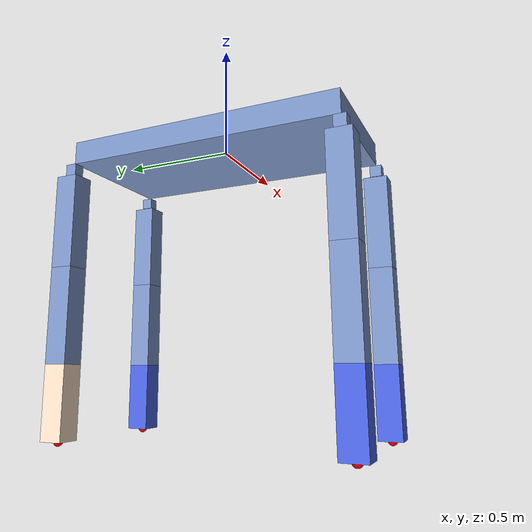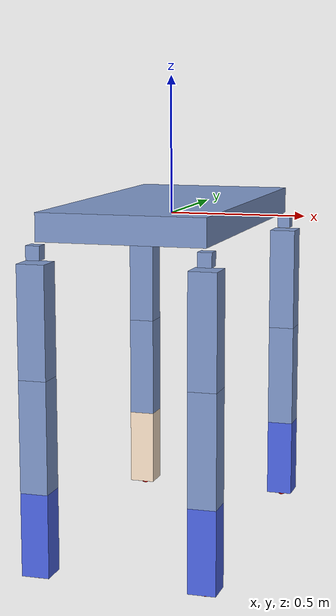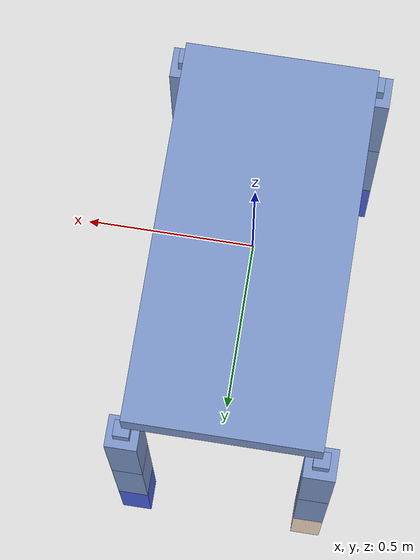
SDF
<?xml version='1.0' encoding='ASCII'?>
<sdf version="1.4">
  <model name="BabyElephant">
    <link name="Body">
      <pose>0.000000 0.000000 0.000000 0.000000 0.000000 0.000000</pose>
      <inertial>
        <pose>0.000000 0.000000 0.000000 0.000000 0.000000 0.000000</pose>
        <mass>7.200000</mass>
        <inertia>
          <ixx>0.870000</ixx>
          <ixy>0.000000</ixy>
          <ixz>0.000000</ixz>
          <iyy>0.222000</iyy>
          <iyz>0.000000</iyz>
          <izz>1.080000</izz>
        </inertia>
      </inertial>
      <collision name="Body_collision">
        <pose>0.000000 0.000000 0.000000 0.000000 0.000000 0.000000</pose>
        <geometry>
          <box>
            <size>0.600000 1.200000 0.100000</size>
          </box>
        </geometry>
      </collision>
      <visual name="Body_visual">
        <pose>0.000000 0.000000 0.000000 0.000000 0.000000 0.000000</pose>
        <geometry>
          <box>
            <size>0.600000 1.200000 0.100000</size>
          </box>
        </geometry>
        <material>
          <diffuse>0.500000 0.600000 0.800000</diffuse>
        </material>
      </visual>
    </link>
    <link name="00FLHip">
      <pose>-0.300000 0.600000 -0.060000 0.000000 0.000000 0.000000</pose>
      <inertial>
        <pose>0.000000 0.000000 -0.025000 0.000000 0.000000 0.000000</pose>
        <mass>0.012500</mass>
        <inertia>
          <ixx>0.000005</ixx>
          <ixy>0.000000</ixy>
          <ixz>0.000000</ixz>
          <iyy>0.000005</iyy>
          <iyz>0.000000</iyz>
          <izz>0.000005</izz>
        </inertia>
      </inertial>
      <collision name="00FLHip_collision">
        <pose>0.000000 0.000000 -0.025000 0.000000 0.000000 0.000000</pose>
        <geometry>
          <box>
            <size>0.050000 0.050000 0.050000</size>
          </box>
        </geometry>
      </collision>
      <visual name="00FLHip_visual">
        <pose>0.000000 0.000000 -0.025000 0.000000 0.000000 0.000000</pose>
        <geometry>
          <box>
            <size>0.050000 0.050000 0.050000</size>
          </box>
        </geometry>
        <material>
          <diffuse>0.500000 0.600000 0.800000</diffuse>
        </material>
      </visual>
    </link>
    <link name="01FLThigh">
      <pose>-0.300000 0.600000 -0.120000 0.000000 0.000000 0.000000</pose>
      <inertial>
        <pose>0.000000 0.000000 -0.200000 0.000000 0.000000 0.000000</pose>
        <mass>0.400000</mass>
        <inertia>
          <ixx>0.005667</ixx>
          <ixy>0.000000</ixy>
          <ixz>0.000000</ixz>
          <iyy>0.005667</iyy>
          <iyz>0.000000</iyz>
          <izz>0.000667</izz>
        </inertia>
      </inertial>
      <collision name="01FLThigh_collision">
        <pose>0.000000 0.000000 -0.200000 0.000000 0.000000 0.000000</pose>
        <geometry>
          <box>
            <size>0.100000 0.100000 0.400000</size>
          </box>
        </geometry>
      </collision>
      <visual name="01FLThigh_visual">
        <pose>0.000000 0.000000 -0.200000 0.000000 0.000000 0.000000</pose>
        <geometry>
          <box>
            <size>0.100000 0.100000 0.400000</size>
          </box>
        </geometry>
        <material>
          <diffuse>0.500000 0.600000 0.800000</diffuse>
        </material>
      </visual>
    </link>
    <link name="02FLShin">
      <pose>-0.300000 0.600000 -0.520000 0.000000 0.000000 0.000000</pose>
      <inertial>
        <pose>0.000000 0.000000 -0.200000 0.000000 0.000000 0.000000</pose>
        <mass>0.400000</mass>
        <inertia>
          <ixx>0.005667</ixx>
          <ixy>0.000000</ixy>
          <ixz>0.000000</ixz>
          <iyy>0.005667</iyy>
          <iyz>0.000000</iyz>
          <izz>0.000667</izz>
        </inertia>
      </inertial>
      <collision name="02FLShin_collision">
        <pose>0.000000 0.000000 -0.200000 0.000000 0.000000 0.000000</pose>
        <geometry>
          <box>
            <size>0.100000 0.100000 0.400000</size>
          </box>
        </geometry>
      </collision>
      <visual name="02FLShin_visual">
        <pose>0.000000 0.000000 -0.200000 0.000000 0.000000 0.000000</pose>
        <geometry>
          <box>
            <size>0.100000 0.100000 0.400000</size>
          </box>
        </geometry>
        <material>
          <diffuse>0.500000 0.600000 0.800000</diffuse>
        </material>
      </visual>
    </link>
    <link name="03FLFoot">
      <pose>-0.300000 0.600000 -0.920000 0.000000 0.000000 0.000000</pose>
      <inertial>
        <pose>0.000000 0.000000 -0.150000 0.000000 0.000000 0.000000</pose>
        <mass>0.300000</mass>
        <inertia>
          <ixx>0.002500</ixx>
          <ixy>0.000000</ixy>
          <ixz>0.000000</ixz>
          <iyy>0.002500</iyy>
          <iyz>0.000000</iyz>
          <izz>0.000500</izz>
        </inertia>
      </inertial>
      <collision name="03FLFoot_collision">
        <pose>0.000000 0.000000 -0.150000 0.000000 0.000000 0.000000</pose>
        <geometry>
          <box>
            <size>0.100000 0.100000 0.300000</size>
          </box>
        </geometry>
      </collision>
      <visual name="03FLFoot_visual">
        <pose>0.000000 0.000000 -0.150000 0.000000 0.000000 0.000000</pose>
        <geometry>
          <box>
            <size>0.100000 0.100000 0.300000</size>
          </box>
        </geometry>
        <material>
          <diffuse>1.000000 0.900000 0.800000</diffuse>
        </material>
      </visual>
      <visual name="FL_End">
        <pose>0.000000 0.000000 -0.300000 0.000000 0.000000 0.000000</pose>
        <geometry>
          <sphere>
            <radius>0.020000</radius>
          </sphere>
        </geometry>
        <material>
          <diffuse>1.000000 0.000000 0.000000</diffuse>
        </material>
      </visual>
    </link>
    <link name="04FRHip">
      <pose>0.300000 0.600000 -0.060000 0.000000 0.000000 0.000000</pose>
      <inertial>
        <pose>0.000000 0.000000 -0.025000 0.000000 0.000000 0.000000</pose>
        <mass>0.012500</mass>
        <inertia>
          <ixx>0.000005</ixx>
          <ixy>0.000000</ixy>
          <ixz>0.000000</ixz>
          <iyy>0.000005</iyy>
          <iyz>0.000000</iyz>
          <izz>0.000005</izz>
        </inertia>
      </inertial>
      <collision name="04FRHip_collision">
        <pose>0.000000 0.000000 -0.025000 0.000000 0.000000 0.000000</pose>
        <geometry>
          <box>
            <size>0.050000 0.050000 0.050000</size>
          </box>
        </geometry>
      </collision>
      <visual name="04FRHip_visual">
        <pose>0.000000 0.000000 -0.025000 0.000000 0.000000 0.000000</pose>
        <geometry>
          <box>
            <size>0.050000 0.050000 0.050000</size>
          </box>
        </geometry>
        <material>
          <diffuse>0.500000 0.600000 0.800000</diffuse>
        </material>
      </visual>
    </link>
    <link name="05FRThigh">
      <pose>0.300000 0.600000 -0.120000 0.000000 0.000000 0.000000</pose>
      <inertial>
        <pose>0.000000 0.000000 -0.200000 0.000000 0.000000 0.000000</pose>
        <mass>0.400000</mass>
        <inertia>
          <ixx>0.005667</ixx>
          <ixy>0.000000</ixy>
          <ixz>0.000000</ixz>
          <iyy>0.005667</iyy>
          <iyz>0.000000</iyz>
          <izz>0.000667</izz>
        </inertia>
      </inertial>
      <collision name="05FRThigh_collision">
        <pose>0.000000 0.000000 -0.200000 0.000000 0.000000 0.000000</pose>
        <geometry>
          <box>
            <size>0.100000 0.100000 0.400000</size>
          </box>
        </geometry>
      </collision>
      <visual name="05FRThigh_visual">
        <pose>0.000000 0.000000 -0.200000 0.000000 0.000000 0.000000</pose>
        <geometry>
          <box>
            <size>0.100000 0.100000 0.400000</size>
          </box>
        </geometry>
        <material>
          <diffuse>0.500000 0.600000 0.800000</diffuse>
        </material>
      </visual>
    </link>
    <link name="06FRShin">
      <pose>0.300000 0.600000 -0.520000 0.000000 0.000000 0.000000</pose>
      <inertial>
        <pose>0.000000 0.000000 -0.200000 0.000000 0.000000 0.000000</pose>
        <mass>0.400000</mass>
        <inertia>
          <ixx>0.005667</ixx>
          <ixy>0.000000</ixy>
          <ixz>0.000000</ixz>
          <iyy>0.005667</iyy>
          <iyz>0.000000</iyz>
          <izz>0.000667</izz>
        </inertia>
      </inertial>
      <collision name="06FRShin_collision">
        <pose>0.000000 0.000000 -0.200000 0.000000 0.000000 0.000000</pose>
        <geometry>
          <box>
            <size>0.100000 0.100000 0.400000</size>
          </box>
        </geometry>
      </collision>
      <visual name="06FRShin_visual">
        <pose>0.000000 0.000000 -0.200000 0.000000 0.000000 0.000000</pose>
        <geometry>
          <box>
            <size>0.100000 0.100000 0.400000</size>
          </box>
        </geometry>
        <material>
          <diffuse>0.500000 0.600000 0.800000</diffuse>
        </material>
      </visual>
    </link>
    <link name="07FRFoot">
      <pose>0.300000 0.600000 -0.920000 0.000000 0.000000 0.000000</pose>
      <inertial>
        <pose>0.000000 0.000000 -0.150000 0.000000 0.000000 0.000000</pose>
        <mass>0.300000</mass>
        <inertia>
          <ixx>0.002500</ixx>
          <ixy>0.000000</ixy>
          <ixz>0.000000</ixz>
          <iyy>0.002500</iyy>
          <iyz>0.000000</iyz>
          <izz>0.000500</izz>
        </inertia>
      </inertial>
      <collision name="07FRFoot_collision">
        <pose>0.000000 0.000000 -0.150000 0.000000 0.000000 0.000000</pose>
        <geometry>
          <box>
            <size>0.100000 0.100000 0.300000</size>
          </box>
        </geometry>
      </collision>
      <visual name="07FRFoot_visual">
        <pose>0.000000 0.000000 -0.150000 0.000000 0.000000 0.000000</pose>
        <geometry>
          <box>
            <size>0.100000 0.100000 0.300000</size>
          </box>
        </geometry>
        <material>
          <diffuse>0.300000 0.400000 0.900000</diffuse>
        </material>
      </visual>
      <visual name="FR_End">
        <pose>0.000000 0.000000 -0.300000 0.000000 0.000000 0.000000</pose>
        <geometry>
          <sphere>
            <radius>0.020000</radius>
          </sphere>
        </geometry>
        <material>
          <diffuse>1.000000 0.000000 0.000000</diffuse>
        </material>
      </visual>
    </link>
    <link name="08BLHip">
      <pose>-0.300000 -0.600000 -0.060000 0.000000 0.000000 0.000000</pose>
      <inertial>
        <pose>0.000000 0.000000 -0.025000 0.000000 0.000000 0.000000</pose>
        <mass>0.012500</mass>
        <inertia>
          <ixx>0.000005</ixx>
          <ixy>0.000000</ixy>
          <ixz>0.000000</ixz>
          <iyy>0.000005</iyy>
          <iyz>0.000000</iyz>
          <izz>0.000005</izz>
        </inertia>
      </inertial>
      <collision name="08BLHip_collision">
        <pose>0.000000 0.000000 -0.025000 0.000000 0.000000 0.000000</pose>
        <geometry>
          <box>
            <size>0.050000 0.050000 0.050000</size>
          </box>
        </geometry>
      </collision>
      <visual name="08BLHip_visual">
        <pose>0.000000 0.000000 -0.025000 0.000000 0.000000 0.000000</pose>
        <geometry>
          <box>
            <size>0.050000 0.050000 0.050000</size>
          </box>
        </geometry>
        <material>
          <diffuse>0.500000 0.600000 0.800000</diffuse>
        </material>
      </visual>
    </link>
    <link name="09BLThigh">
      <pose>-0.300000 -0.600000 -0.120000 0.000000 0.000000 0.000000</pose>
      <inertial>
        <pose>0.000000 0.000000 -0.200000 0.000000 0.000000 0.000000</pose>
        <mass>0.400000</mass>
        <inertia>
          <ixx>0.005667</ixx>
          <ixy>0.000000</ixy>
          <ixz>0.000000</ixz>
          <iyy>0.005667</iyy>
          <iyz>0.000000</iyz>
          <izz>0.000667</izz>
        </inertia>
      </inertial>
      <collision name="09BLThigh_collision">
        <pose>0.000000 0.000000 -0.200000 0.000000 0.000000 0.000000</pose>
        <geometry>
          <box>
            <size>0.100000 0.100000 0.400000</size>
          </box>
        </geometry>
      </collision>
      <visual name="09BLThigh_visual">
        <pose>0.000000 0.000000 -0.200000 0.000000 0.000000 0.000000</pose>
        <geometry>
          <box>
            <size>0.100000 0.100000 0.400000</size>
          </box>
        </geometry>
        <material>
          <diffuse>0.500000 0.600000 0.800000</diffuse>
        </material>
      </visual>
    </link>
    <link name="10BLShin">
      <pose>-0.300000 -0.600000 -0.520000 0.000000 0.000000 0.000000</pose>
      <inertial>
        <pose>0.000000 0.000000 -0.200000 0.000000 0.000000 0.000000</pose>
        <mass>0.400000</mass>
        <inertia>
          <ixx>0.005667</ixx>
          <ixy>0.000000</ixy>
          <ixz>0.000000</ixz>
          <iyy>0.005667</iyy>
          <iyz>0.000000</iyz>
          <izz>0.000667</izz>
        </inertia>
      </inertial>
      <collision name="10BLShin_collision">
        <pose>0.000000 0.000000 -0.200000 0.000000 0.000000 0.000000</pose>
        <geometry>
          <box>
            <size>0.100000 0.100000 0.400000</size>
          </box>
        </geometry>
      </collision>
      <visual name="10BLShin_visual">
        <pose>0.000000 0.000000 -0.200000 0.000000 0.000000 0.000000</pose>
        <geometry>
          <box>
            <size>0.100000 0.100000 0.400000</size>
          </box>
        </geometry>
        <material>
          <diffuse>0.500000 0.600000 0.800000</diffuse>
        </material>
      </visual>
    </link>
    <link name="11BLFoot">
      <pose>-0.300000 -0.600000 -0.920000 0.000000 0.000000 0.000000</pose>
      <inertial>
        <pose>0.000000 0.000000 -0.150000 0.000000 0.000000 0.000000</pose>
        <mass>0.300000</mass>
        <inertia>
          <ixx>0.002500</ixx>
          <ixy>0.000000</ixy>
          <ixz>0.000000</ixz>
          <iyy>0.002500</iyy>
          <iyz>0.000000</iyz>
          <izz>0.000500</izz>
        </inertia>
      </inertial>
      <collision name="11BLFoot_collision">
        <pose>0.000000 0.000000 -0.150000 0.000000 0.000000 0.000000</pose>
        <geometry>
          <box>
            <size>0.100000 0.100000 0.300000</size>
          </box>
        </geometry>
      </collision>
      <visual name="11BLFoot_visual">
        <pose>0.000000 0.000000 -0.150000 0.000000 0.000000 0.000000</pose>
        <geometry>
          <box>
            <size>0.100000 0.100000 0.300000</size>
          </box>
        </geometry>
        <material>
          <diffuse>0.300000 0.400000 0.900000</diffuse>
        </material>
      </visual>
      <visual name="BL_End">
        <pose>0.000000 0.000000 -0.300000 0.000000 0.000000 0.000000</pose>
        <geometry>
          <sphere>
            <radius>0.020000</radius>
          </sphere>
        </geometry>
        <material>
          <diffuse>1.000000 0.000000 0.000000</diffuse>
        </material>
      </visual>
    </link>
    <link name="12BRHip">
      <pose>0.300000 -0.600000 -0.060000 0.000000 0.000000 0.000000</pose>
      <inertial>
        <pose>0.000000 0.000000 -0.025000 0.000000 0.000000 0.000000</pose>
        <mass>0.012500</mass>
        <inertia>
          <ixx>0.000005</ixx>
          <ixy>0.000000</ixy>
          <ixz>0.000000</ixz>
          <iyy>0.000005</iyy>
          <iyz>0.000000</iyz>
          <izz>0.000005</izz>
        </inertia>
      </inertial>
      <collision name="12BRHip_collision">
        <pose>0.000000 0.000000 -0.025000 0.000000 0.000000 0.000000</pose>
        <geometry>
          <box>
            <size>0.050000 0.050000 0.050000</size>
          </box>
        </geometry>
      </collision>
      <visual name="12BRHip_visual">
        <pose>0.000000 0.000000 -0.025000 0.000000 0.000000 0.000000</pose>
        <geometry>
          <box>
            <size>0.050000 0.050000 0.050000</size>
          </box>
        </geometry>
        <material>
          <diffuse>0.500000 0.600000 0.800000</diffuse>
        </material>
      </visual>
    </link>
    <link name="13BRThigh">
      <pose>0.300000 -0.600000 -0.120000 0.000000 0.000000 0.000000</pose>
      <inertial>
        <pose>0.000000 0.000000 -0.200000 0.000000 0.000000 0.000000</pose>
        <mass>0.400000</mass>
        <inertia>
          <ixx>0.005667</ixx>
          <ixy>0.000000</ixy>
          <ixz>0.000000</ixz>
          <iyy>0.005667</iyy>
          <iyz>0.000000</iyz>
          <izz>0.000667</izz>
        </inertia>
      </inertial>
      <collision name="13BRThigh_collision">
        <pose>0.000000 0.000000 -0.200000 0.000000 0.000000 0.000000</pose>
        <geometry>
          <box>
            <size>0.100000 0.100000 0.400000</size>
          </box>
        </geometry>
      </collision>
      <visual name="13BRThigh_visual">
        <pose>0.000000 0.000000 -0.200000 0.000000 0.000000 0.000000</pose>
        <geometry>
          <box>
            <size>0.100000 0.100000 0.400000</size>
          </box>
        </geometry>
        <material>
          <diffuse>0.500000 0.600000 0.800000</diffuse>
        </material>
      </visual>
    </link>
    <link name="14BRShin">
      <pose>0.300000 -0.600000 -0.520000 0.000000 0.000000 0.000000</pose>
      <inertial>
        <pose>0.000000 0.000000 -0.200000 0.000000 0.000000 0.000000</pose>
        <mass>0.400000</mass>
        <inertia>
          <ixx>0.005667</ixx>
          <ixy>0.000000</ixy>
          <ixz>0.000000</ixz>
          <iyy>0.005667</iyy>
          <iyz>0.000000</iyz>
          <izz>0.000667</izz>
        </inertia>
      </inertial>
      <collision name="14BRShin_collision">
        <pose>0.000000 0.000000 -0.200000 0.000000 0.000000 0.000000</pose>
        <geometry>
          <box>
            <size>0.100000 0.100000 0.400000</size>
          </box>
        </geometry>
      </collision>
      <visual name="14BRShin_visual">
        <pose>0.000000 0.000000 -0.200000 0.000000 0.000000 0.000000</pose>
        <geometry>
          <box>
            <size>0.100000 0.100000 0.400000</size>
          </box>
        </geometry>
        <material>
          <diffuse>0.500000 0.600000 0.800000</diffuse>
        </material>
      </visual>
    </link>
    <link name="15BRFoot">
      <pose>0.300000 -0.600000 -0.920000 0.000000 0.000000 0.000000</pose>
      <inertial>
        <pose>0.000000 0.000000 -0.150000 0.000000 0.000000 0.000000</pose>
        <mass>0.300000</mass>
        <inertia>
          <ixx>0.002500</ixx>
          <ixy>0.000000</ixy>
          <ixz>0.000000</ixz>
          <iyy>0.002500</iyy>
          <iyz>0.000000</iyz>
          <izz>0.000500</izz>
        </inertia>
      </inertial>
      <collision name="15BRFoot_collision">
        <pose>0.000000 0.000000 -0.150000 0.000000 0.000000 0.000000</pose>
        <geometry>
          <box>
            <size>0.100000 0.100000 0.300000</size>
          </box>
        </geometry>
      </collision>
      <visual name="15BRFoot_visual">
        <pose>0.000000 0.000000 -0.150000 0.000000 0.000000 0.000000</pose>
        <geometry>
          <box>
            <size>0.100000 0.100000 0.300000</size>
          </box>
        </geometry>
        <material>
          <diffuse>0.300000 0.400000 0.900000</diffuse>
        </material>
      </visual>
      <visual name="BR_End">
        <pose>0.000000 0.000000 -0.300000 0.000000 0.000000 0.000000</pose>
        <geometry>
          <sphere>
            <radius>0.020000</radius>
          </sphere>
        </geometry>
        <material>
          <diffuse>1.000000 0.000000 0.000000</diffuse>
        </material>
      </visual>
    </link>
    <joint name="j_00FLHip" type="revolute">
      <pose>0.000000 0.000000 0.000000 0.000000 0.000000 0.000000</pose>
      <use_parent_model_frame>0</use_parent_model_frame>
      <parent>Body</parent>
      <child>00FLHip</child>
      <axis>
        <xyz>0.000000 1.000000 0.000000</xyz>
        <limit>
          <lower>-3.141593</lower>
          <upper>3.141593</upper>
          <effort>200.000000</effort>
          <velocity>12.000000</velocity>
        </limit>
      </axis>
    </joint>
    <joint name="j_01FLThigh" type="revolute">
      <pose>0.000000 0.000000 0.000000 0.000000 0.000000 0.000000</pose>
      <use_parent_model_frame>0</use_parent_model_frame>
      <parent>00FLHip</parent>
      <child>01FLThigh</child>
      <axis>
        <xyz>1.000000 0.000000 0.000000</xyz>
        <limit>
          <lower>-3.141593</lower>
          <upper>3.141593</upper>
          <effort>200.000000</effort>
          <velocity>12.000000</velocity>
        </limit>
      </axis>
    </joint>
    <joint name="j_02FLShin" type="revolute">
      <pose>0.000000 0.000000 0.000000 0.000000 0.000000 0.000000</pose>
      <use_parent_model_frame>0</use_parent_model_frame>
      <parent>01FLThigh</parent>
      <child>02FLShin</child>
      <axis>
        <xyz>1.000000 0.000000 0.000000</xyz>
        <limit>
          <lower>-3.141593</lower>
          <upper>3.141593</upper>
          <effort>200.000000</effort>
          <velocity>12.000000</velocity>
        </limit>
      </axis>
    </joint>
    <joint name="j_03FLFoot" type="revolute">
      <pose>0.000000 0.000000 0.000000 0.000000 0.000000 0.000000</pose>
      <use_parent_model_frame>0</use_parent_model_frame>
      <parent>02FLShin</parent>
      <child>03FLFoot</child>
      <axis>
        <xyz>1.000000 0.000000 0.000000</xyz>
        <limit>
          <lower>-3.141593</lower>
          <upper>3.141593</upper>
          <effort>200.000000</effort>
          <velocity>12.000000</velocity>
        </limit>
      </axis>
    </joint>
    <joint name="j_04FRHip" type="revolute">
      <pose>0.000000 0.000000 0.000000 0.000000 0.000000 0.000000</pose>
      <use_parent_model_frame>0</use_parent_model_frame>
      <parent>Body</parent>
      <child>04FRHip</child>
      <axis>
        <xyz>0.000000 1.000000 0.000000</xyz>
        <limit>
          <lower>-3.141593</lower>
          <upper>3.141593</upper>
          <effort>200.000000</effort>
          <velocity>12.000000</velocity>
        </limit>
      </axis>
    </joint>
    <joint name="j_05FRThigh" type="revolute">
      <pose>0.000000 0.000000 0.000000 0.000000 0.000000 0.000000</pose>
      <use_parent_model_frame>0</use_parent_model_frame>
      <parent>04FRHip</parent>
      <child>05FRThigh</child>
      <axis>
        <xyz>1.000000 0.000000 0.000000</xyz>
        <limit>
          <lower>-3.141593</lower>
          <upper>3.141593</upper>
          <effort>200.000000</effort>
          <velocity>12.000000</velocity>
        </limit>
      </axis>
    </joint>
    <joint name="j_06FRShin" type="revolute">
      <pose>0.000000 0.000000 0.000000 0.000000 0.000000 0.000000</pose>
      <use_parent_model_frame>0</use_parent_model_frame>
      <parent>05FRThigh</parent>
      <child>06FRShin</child>
      <axis>
        <xyz>1.000000 0.000000 0.000000</xyz>
        <limit>
          <lower>-3.141593</lower>
          <upper>3.141593</upper>
          <effort>200.000000</effort>
          <velocity>12.000000</velocity>
        </limit>
      </axis>
    </joint>
    <joint name="j_07FRFoot" type="revolute">
      <pose>0.000000 0.000000 0.000000 0.000000 0.000000 0.000000</pose>
      <use_parent_model_frame>0</use_parent_model_frame>
      <parent>06FRShin</parent>
      <child>07FRFoot</child>
      <axis>
        <xyz>1.000000 0.000000 0.000000</xyz>
        <limit>
          <lower>-3.141593</lower>
          <upper>3.141593</upper>
          <effort>200.000000</effort>
          <velocity>12.000000</velocity>
        </limit>
      </axis>
    </joint>
    <joint name="j_08BLHip" type="revolute">
      <pose>0.000000 0.000000 0.000000 0.000000 0.000000 0.000000</pose>
      <use_parent_model_frame>0</use_parent_model_frame>
      <parent>Body</parent>
      <child>08BLHip</child>
      <axis>
        <xyz>0.000000 1.000000 0.000000</xyz>
        <limit>
          <lower>-3.141593</lower>
          <upper>3.141593</upper>
          <effort>200.000000</effort>
          <velocity>12.000000</velocity>
        </limit>
      </axis>
    </joint>
    <joint name="j_09BLThigh" type="revolute">
      <pose>0.000000 0.000000 0.000000 0.000000 0.000000 0.000000</pose>
      <use_parent_model_frame>0</use_parent_model_frame>
      <parent>08BLHip</parent>
      <child>09BLThigh</child>
      <axis>
        <xyz>1.000000 0.000000 0.000000</xyz>
        <limit>
          <lower>-3.141593</lower>
          <upper>3.141593</upper>
          <effort>200.000000</effort>
          <velocity>12.000000</velocity>
        </limit>
      </axis>
    </joint>
    <joint name="j_10BLShin" type="revolute">
      <pose>0.000000 0.000000 0.000000 0.000000 0.000000 0.000000</pose>
      <use_parent_model_frame>0</use_parent_model_frame>
      <parent>09BLThigh</parent>
      <child>10BLShin</child>
      <axis>
        <xyz>1.000000 0.000000 0.000000</xyz>
        <limit>
          <lower>-3.141593</lower>
          <upper>3.141593</upper>
          <effort>200.000000</effort>
          <velocity>12.000000</velocity>
        </limit>
      </axis>
    </joint>
    <joint name="j_11BLFoot" type="revolute">
      <pose>0.000000 0.000000 0.000000 0.000000 0.000000 0.000000</pose>
      <use_parent_model_frame>0</use_parent_model_frame>
      <parent>10BLShin</parent>
      <child>11BLFoot</child>
      <axis>
        <xyz>1.000000 0.000000 0.000000</xyz>
        <limit>
          <lower>-3.141593</lower>
          <upper>3.141593</upper>
          <effort>200.000000</effort>
          <velocity>12.000000</velocity>
        </limit>
      </axis>
    </joint>
    <joint name="j_12BRHip" type="revolute">
      <pose>0.000000 0.000000 0.000000 0.000000 0.000000 0.000000</pose>
      <use_parent_model_frame>0</use_parent_model_frame>
      <parent>Body</parent>
      <child>12BRHip</child>
      <axis>
        <xyz>0.000000 1.000000 0.000000</xyz>
        <limit>
          <lower>-3.141593</lower>
          <upper>3.141593</upper>
          <effort>200.000000</effort>
          <velocity>12.000000</velocity>
        </limit>
      </axis>
    </joint>
    <joint name="j_13BRThigh" type="revolute">
      <pose>0.000000 0.000000 0.000000 0.000000 0.000000 0.000000</pose>
      <use_parent_model_frame>0</use_parent_model_frame>
      <parent>12BRHip</parent>
      <child>13BRThigh</child>
      <axis>
        <xyz>1.000000 0.000000 0.000000</xyz>
        <limit>
          <lower>-3.141593</lower>
          <upper>3.141593</upper>
          <effort>200.000000</effort>
          <velocity>12.000000</velocity>
        </limit>
      </axis>
    </joint>
    <joint name="j_14BRShin" type="revolute">
      <pose>0.000000 0.000000 0.000000 0.000000 0.000000 0.000000</pose>
      <use_parent_model_frame>0</use_parent_model_frame>
      <parent>13BRThigh</parent>
      <child>14BRShin</child>
      <axis>
        <xyz>1.000000 0.000000 0.000000</xyz>
        <limit>
          <lower>-3.141593</lower>
          <upper>3.141593</upper>
          <effort>200.000000</effort>
          <velocity>12.000000</velocity>
        </limit>
      </axis>
    </joint>
    <joint name="j_15BRFoot" type="revolute">
      <pose>0.000000 0.000000 0.000000 0.000000 0.000000 0.000000</pose>
      <use_parent_model_frame>0</use_parent_model_frame>
      <parent>14BRShin</parent>
      <child>15BRFoot</child>
      <axis>
        <xyz>1.000000 0.000000 0.000000</xyz>
        <limit>
          <lower>-3.141593</lower>
          <upper>3.141593</upper>
          <effort>200.000000</effort>
          <velocity>12.000000</velocity>
        </limit>
      </axis>
    </joint>
  </model>
</sdf>
